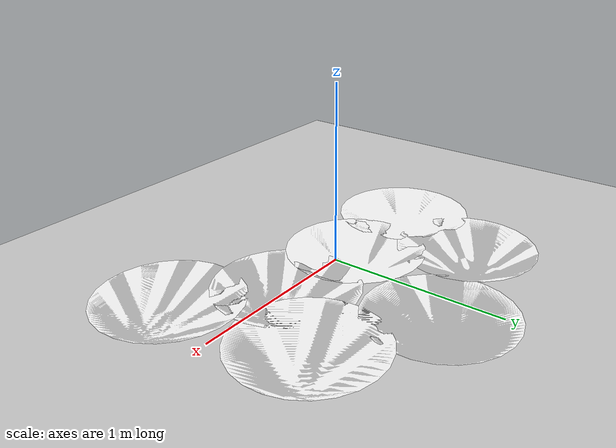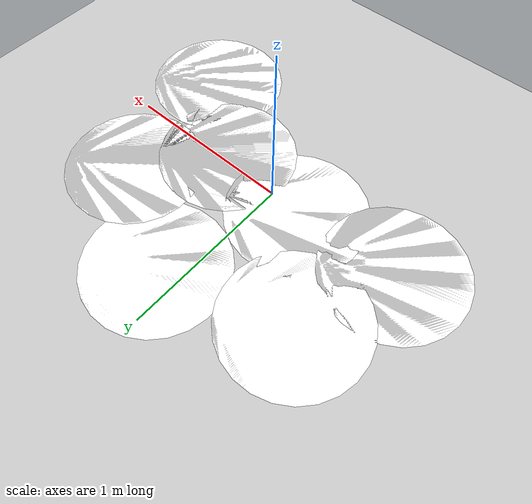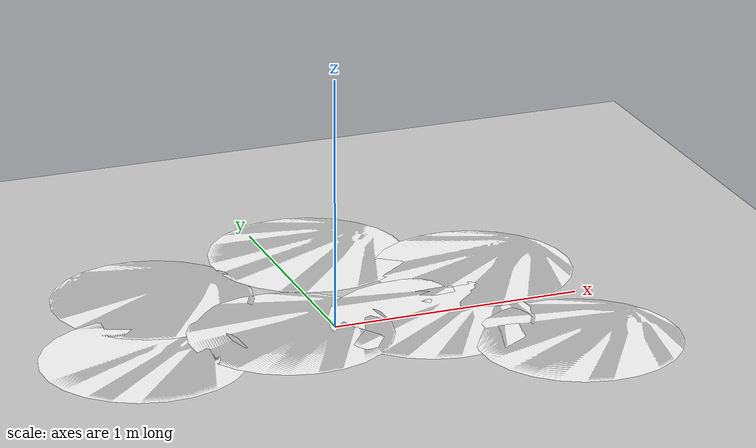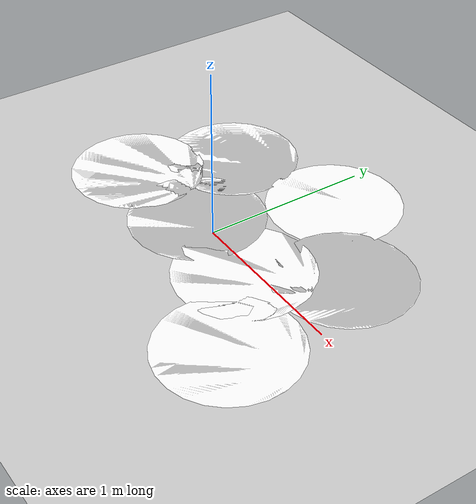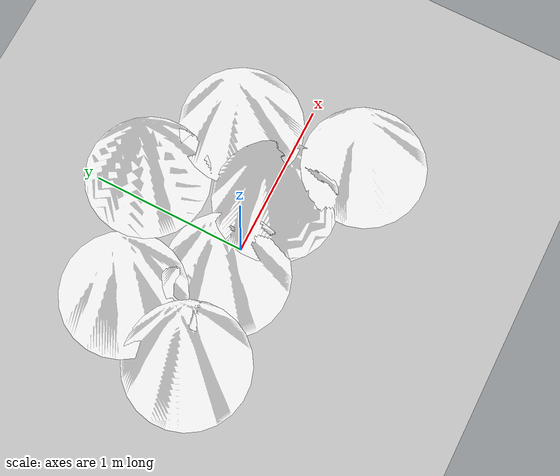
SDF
<sdf version="1.4">
 <world name="default">
  <light name="sun" type="directional">
   <pose>0 0 10 0 -0 0</pose>
   <diffuse>0.8 0.8 0.8 1</diffuse>
   <specular>0.2 0.2 0.2 1</specular>
   <attenuation>
    <range>1000</range>
    <constant>0.9</constant>
    <linear>0.01</linear>
    <quadratic>0.001</quadratic>
   </attenuation>
   <direction>-0.5 0.1 -0.9</direction>
  </light>
  <model name="ground_plane">
   <static>1</static>
   <link name="link">
    <collision name="collision">
     <geometry><plane><normal>0 0 1</normal><size>100 100</size></plane></geometry>
     <surface><friction><ode><mu>100</mu><mu2>50</mu2></ode></friction></surface>
    </collision>
    <visual name="visual">
     <cast_shadows>0</cast_shadows>
     <geometry><plane><normal>0 0 1</normal><size>100 100</size></plane></geometry>
     <material>
      <script><uri>file://media/materials/scripts/gazebo.material</uri><name>Gazebo/Grey</name></script>
     </material>
    </visual>
    <velocity_decay><linear>0</linear><angular>0</angular></velocity_decay>
   </link>
  </model>
  <physics type="ode">
   <max_step_size>0.01</max_step_size>
   <real_time_factor>1</real_time_factor>
   <real_time_update_rate>100</real_time_update_rate>
   <gravity>0 0 -9.8</gravity>
  </physics>
  <scene><ambient>0.4 0.4 0.4 1</ambient><background>0.7 0.7 0.7 1</background><shadows>1</shadows></scene>
  <model name="fogo">
   <static>1</static>
   <link name="chassis">
    <pose>0 0 0.001 0 -0 0</pose>
    <visual name="visual">
     <geometry><mesh><uri>file:///home/dav/.gazebo/models/1fogo/fire_marker.dae</uri></mesh></geometry>
    </visual>
    <velocity_decay><linear>0</linear><angular>0</angular></velocity_decay>
   </link>
   <pose>0.717847 0.365491 0 0 -0 0</pose>
  </model>
  <model name="fogo_0">
   <static>1</static>
   <link name="chassis">
    <pose>0 0 0.001 0 -0 0</pose>
    <visual name="visual">
     <geometry><mesh><uri>file:///home/dav/.gazebo/models/1fogo/fire_marker.dae</uri></mesh></geometry>
    </visual>
    <velocity_decay><linear>0</linear><angular>0</angular></velocity_decay>
   </link>
   <pose>0.151821 0.733099 0 0 -0 0</pose>
  </model>
  <model name="fogo_1">
   <static>1</static>
   <link name="chassis">
    <pose>0 0 0.001 0 -0 0</pose>
    <visual name="visual">
     <geometry><mesh><uri>file:///home/dav/.gazebo/models/1fogo/fire_marker.dae</uri></mesh></geometry>
    </visual>
    <velocity_decay><linear>0</linear><angular>0</angular></velocity_decay>
   </link>
   <pose>0.826315 -0.439743 0 0 -0 0</pose>
  </model>
  <model name="fogo_2">
   <static>1</static>
   <link name="chassis">
    <pose>0 0 0.001 0 -0 0</pose>
    <visual name="visual">
     <geometry><mesh><uri>file:///home/dav/.gazebo/models/1fogo/fire_marker.dae</uri></mesh></geometry>
    </visual>
    <velocity_decay><linear>0</linear><angular>0</angular></velocity_decay>
   </link>
   <pose>-0.777431 -0.035578 0 0 -0 0</pose>
  </model>
  <model name="fogo_3">
   <static>1</static>
   <link name="chassis">
    <pose>0 0 0.001 0 -0 0</pose>
    <visual name="visual">
     <geometry><mesh><uri>file:///home/dav/.gazebo/models/1fogo/fire_marker.dae</uri></mesh></geometry>
    </visual>
    <velocity_decay><linear>0</linear><angular>0</angular></velocity_decay>
   </link>
   <pose>-0.572211 0.509124 0 0 -0 0</pose>
  </model>
  <model name="fogo_4">
   <static>1</static>
   <link name="chassis">
    <pose>0 0 0.001 0 -0 0</pose>
    <visual name="visual">
     <geometry><mesh><uri>file:///home/dav/.gazebo/models/1fogo/fire_marker.dae</uri></mesh></geometry>
    </visual>
    <velocity_decay><linear>0</linear><angular>0</angular></velocity_decay>
   </link>
   <pose>-0.177683 0.007964 0 0 -0 0</pose>
  </model>
  <model name="fogo_5">
   <static>1</static>
   <link name="chassis">
    <pose>0 0 0.001 0 -0 0</pose>
    <visual name="visual">
     <geometry><mesh><uri>file:///home/dav/.gazebo/models/1fogo/fire_marker.dae</uri></mesh></geometry>
    </visual>
    <velocity_decay><linear>0</linear><angular>0</angular></velocity_decay>
   </link>
   <pose>0.377745 -0.04478 0 0 -0 0</pose>
  </model>
 </world>
</sdf>
